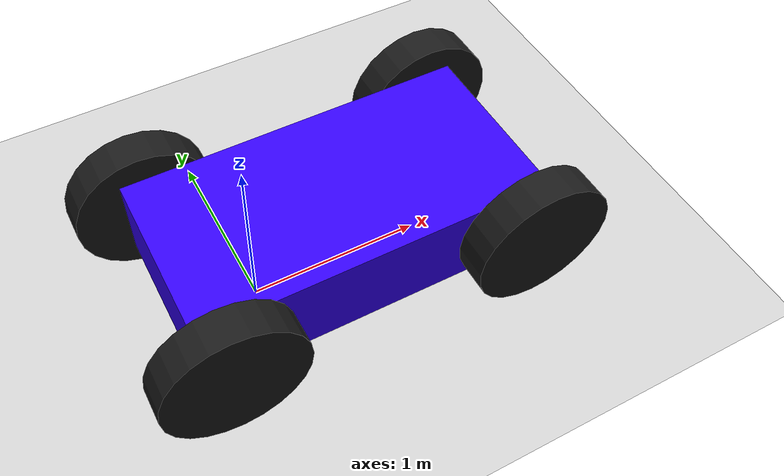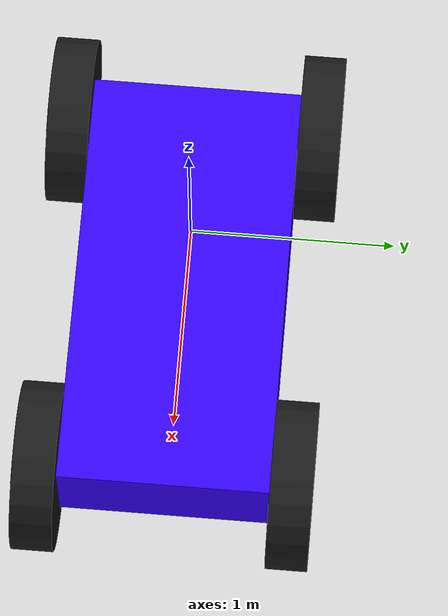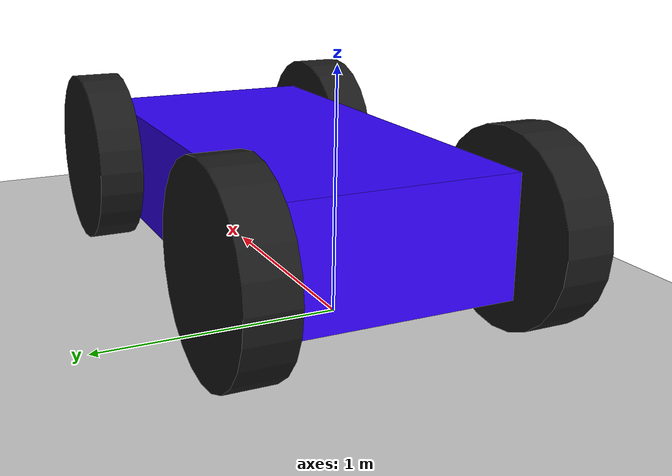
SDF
<!-- default world exported from ignitiongazebo -->
<!-- model only thing applied over it -->

<sdf version='1.9'>
    <world name='car_world'>
        <physics name='1ms' type='ignored'>
            <max_step_size>0.001</max_step_size>
            <real_time_factor>1</real_time_factor>
            <real_time_update_rate>1000</real_time_update_rate>
        </physics>
        <plugin name='gz::sim::systems::Physics' filename='ignition-gazebo-physics-system' />
        <plugin name='gz::sim::systems::UserCommands'
            filename='ignition-gazebo-user-commands-system' />
        <plugin name='gz::sim::systems::SceneBroadcaster'
            filename='ignition-gazebo-scene-broadcaster-system' />
        <plugin name='gz::sim::systems::Contact' filename='ignition-gazebo-contact-system' />
        <gravity>0 0 -9.8</gravity>
        <magnetic_field>6e-06 2.3e-05 -4.2e-05</magnetic_field>
        <atmosphere type='adiabatic' />
        <scene>
            <ambient>0.4 0.4 0.4 1</ambient>
            <background>0.7 0.7 0.7 1</background>
            <shadows>true</shadows>
        </scene>
        <model name='ground_plane'>
            <static>true</static>
            <link name='link'>
                <collision name='collision'>
                    <geometry>
                        <plane>
                            <normal>0 0 1</normal>
                            <size>100 100</size>
                        </plane>
                    </geometry>
                    <surface>
                        <friction>
                            <ode />
                        </friction>
                        <bounce />
                        <contact />
                    </surface>
                </collision>
                <visual name='visual'>
                    <geometry>
                        <plane>
                            <normal>0 0 1</normal>
                            <size>100 100</size>
                        </plane>
                    </geometry>
                    <material>
                        <ambient>0.8 0.8 0.8 1</ambient>
                        <diffuse>0.8 0.8 0.8 1</diffuse>
                        <specular>0.8 0.8 0.8 1</specular>
                    </material>
                </visual>
                <pose>0 0 0 0 -0 0</pose>
                <inertial>
                    <pose>0 0 0 0 -0 0</pose>
                    <mass>1</mass>
                    <inertia>
                        <ixx>1</ixx>
                        <ixy>0</ixy>
                        <ixz>0</ixz>
                        <iyy>1</iyy>
                        <iyz>0</iyz>
                        <izz>1</izz>
                    </inertia>
                </inertial>
                <enable_wind>false</enable_wind>
            </link>
            <pose>0 0 0 0 -0 0</pose>
            <self_collide>false</self_collide>
        </model>
        <light name='sun' type='directional'>
            <pose>0 0 10 0 -0 0</pose>
            <cast_shadows>true</cast_shadows>
            <intensity>1</intensity>
            <direction>-0.5 0.1 -0.9</direction>
            <diffuse>0.8 0.8 0.8 1</diffuse>
            <specular>0.2 0.2 0.2 1</specular>
            <attenuation>
                <range>1000</range>
                <linear>0.01</linear>
                <constant>0.90000000000000002</constant>
                <quadratic>0.001</quadratic>
            </attenuation>
            <spot>
                <inner_angle>0</inner_angle>
                <outer_angle>0</outer_angle>
                <falloff>0</falloff>
            </spot>
        </light>

        <!-- default export ends here -->
        <model name="vehicle_one" canonical_link='chassis'>
            <pose relative_to='world'>0 0 0 0 0 0</pose>
            <link name='chassis'>
                <pose relative_to='__model__'>0.5 0 0.4 0 0 0</pose>
                <inertial>
                    <mass>1.2</mass>
                    <inertia>
                        <ixx>0.095329</ixx>
                        <ixy>0</ixy>
                        <ixz>0</ixz>
                        <iyy>0.381317</iyy>
                        <iyz>0</iyz>
                        <izz>0.476646</izz>
                    </inertia>
                </inertial>
                <visual name='visual'>
                    <geometry>
                        <box>
                            <size>2.0 1.0 0.5</size>
                        </box>
                    </geometry>
                    <material>
                        <ambient>0.8 0.0 1.0 1</ambient>
                        <diffuse>0.2 0.0 1.0 1</diffuse>
                        <specular>0.0 0.0 1.0 1</specular>
                    </material>
                </visual>
                <collision name='collision'>
                    <geometry>
                        <box>
                            <size>2.0 1.0 0.5</size>
                        </box>
                    </geometry>
                </collision>
            </link>

            <!-- wheels -->

            <link name='left_front_wheel'>
                <pose relative_to="chassis">-0.88 0.6 0 -1.5707 0 0</pose>
                <inertial>
                    <mass>1</mass>
                    <inertia>
                        <ixx>0.043333</ixx>
                        <ixy>0</ixy>
                        <ixz>0</ixz>
                        <iyy>0.043333</iyy>
                        <iyz>0</iyz>
                        <izz>0.08</izz>
                    </inertia>
                </inertial>
                <visual name='visual'>
                    <geometry>
                        <cylinder>
                            <radius>0.4</radius>
                            <length>0.2</length>
                        </cylinder>
                    </geometry>
                    <material>
                        <ambient>0.1 0.1 0.1 1</ambient>
                        <diffuse>0.1 0.1 0.1 1</diffuse>
                        <specular>0.1 0.1 0.1 1</specular>
                    </material>
                    <collision name='collision'>
                        <geometry>
                            <cylinder>
                                <radius>0.4</radius>
                                <length>0.2</length>
                            </cylinder>
                        </geometry>
                    </collision>
                </visual>
            </link>
            <link name='left_rear_wheel'>
                <pose relative_to="chassis">0.88 0.6 0 -1.5707 0 0</pose>
                <inertial>
                    <mass>1</mass>
                    <inertia>
                        <ixx>0.043333</ixx>
                        <ixy>0</ixy>
                        <ixz>0</ixz>
                        <iyy>0.043333</iyy>
                        <iyz>0</iyz>
                        <izz>0.08</izz>
                    </inertia>
                </inertial>
                <visual name='visual'>
                    <geometry>
                        <cylinder>
                            <radius>0.4</radius>
                            <length>0.2</length>
                        </cylinder>
                    </geometry>
                    <material>
                        <ambient>0.1 0.1 0.1 1</ambient>
                        <diffuse>0.1 0.1 0.1 1</diffuse>
                        <specular>0.1 0.1 0.1 1</specular>
                    </material>
                    <collision name='collision'>
                        <geometry>
                            <cylinder>
                                <radius>0.4</radius>
                                <length>0.2</length>
                            </cylinder>
                        </geometry>
                    </collision>
                </visual>
            </link>
            <link name='right_front_wheel'>
                <pose relative_to="chassis">-0.88 -0.6 0 -1.5707 0 0</pose>
                <inertial>
                    <mass>1</mass>
                    <inertia>
                        <ixx>0.043333</ixx>
                        <ixy>0</ixy>
                        <ixz>0</ixz>
                        <iyy>0.043333</iyy>
                        <iyz>0</iyz>
                        <izz>0.08</izz>
                    </inertia>
                </inertial>
                <visual name='visual'>
                    <geometry>
                        <cylinder>
                            <radius>0.4</radius>
                            <length>0.2</length>
                        </cylinder>
                    </geometry>
                    <material>
                        <ambient>0.1 0.1 0.1 1</ambient>
                        <diffuse>0.1 0.1 0.1 1</diffuse>
                        <specular>0.1 0.1 0.1 1</specular>
                    </material>
                    <collision name='collision'>
                        <geometry>
                            <cylinder>
                                <radius>0.4</radius>
                                <length>0.2</length>
                            </cylinder>
                        </geometry>
                    </collision>
                </visual>
            </link>
            <link name='right_rear_wheel'>
                <pose relative_to="chassis">0.88 -0.6 0 -1.5707 0 0</pose>
                <inertial>
                    <mass>1</mass>
                    <inertia>
                        <ixx>0.043333</ixx>
                        <ixy>0</ixy>
                        <ixz>0</ixz>
                        <iyy>0.043333</iyy>
                        <iyz>0</iyz>
                        <izz>0.08</izz>
                    </inertia>
                </inertial>
                <visual name='visual'>
                    <geometry>
                        <cylinder>
                            <radius>0.4</radius>
                            <length>0.2</length>
                        </cylinder>
                    </geometry>
                    <material>
                        <ambient>0.1 0.1 0.1 1</ambient>
                        <diffuse>0.1 0.1 0.1 1</diffuse>
                        <specular>0.1 0.1 0.1 1</specular>
                    </material>
                    <collision name='collision'>
                        <geometry>
                            <cylinder>
                                <radius>0.4</radius>
                                <length>0.2</length>
                            </cylinder>
                        </geometry>
                    </collision>
                </visual>
            </link>

            <joint name='left_front_joint' type='revolute'>
                <pose relative_to='left_front_wheel' />
                <parent>chassis</parent>
                <child>left_front_wheel</child>
                <axis>
                    <xyz expressed_in="__model__">0 1 0</xyz>
                    <limit>
                        <lower>-1.79769e+308</lower>
                        <upper>1.79769e+308</upper>
                    </limit>
                </axis>
            </joint>
            <joint name='left_rear_joint' type='revolute'>
                <pose relative_to='left_rear_wheel' />
                <parent>chassis</parent>
                <child>left_rear_wheel</child>
                <axis>
                    <xyz expressed_in="__model__">0 1 0</xyz>
                    <limit>
                        <lower>-1.79769e+308</lower>
                        <upper>1.79769e+308</upper>
                    </limit>
                </axis>
            </joint>
            <joint name='right_front_joint' type='revolute'>
                <pose relative_to='right_front_wheel' />
                <parent>chassis</parent>
                <child>right_front_wheel</child>
                <axis>
                    <xyz expressed_in="__model__">0 1 0</xyz>
                    <limit>
                        <lower>-1.79769e+308</lower>
                        <upper>1.79769e+308</upper>
                    </limit>
                </axis>
            </joint>
            <joint name='right_rear_joint' type='revolute'>
                <pose relative_to='right_rear_wheel' />
                <parent>chassis</parent>
                <child>right_rear_wheel</child>
                <axis>
                    <xyz expressed_in="__model__">0 1 0</xyz>
                    <limit>
                        <lower>-1.79769e+308</lower>
                        <upper>1.79769e+308</upper>
                    </limit>
                </axis>
            </joint>

            <!-- define camera which will attach to the car body -->
            <frame name="player_camera_frame" attached_to="chassis">
                <pose>0.8 0 -0.2 0 0 0</pose>
            </frame>
            <link name='player_camera'>
                <pose relative_to='player_camera_frame' />
                <inertial>
                    <mass>1</mass>
                    <inertia>
                        <ixx>0.016</ixx>
                        <ixy>0</ixy>
                        <ixz>0</ixz>
                        <iyy>0.016</iyy>
                        <iyz>0</iyz>
                        <izz>0.016</izz>
                    </inertia>
                </inertial>
                <visual name='visual'>
                    <geometry>
                        <sphere>
                            <radius>0.2</radius>
                        </sphere>
                    </geometry>
                    <material>
                        <ambient>0.0 1 0.0 1</ambient>
                        <diffuse>0.0 1 0.0 1</diffuse>
                        <specular>0.0 1 0.0 1</specular>
                    </material>
                </visual>
                <collision name='collision'>
                    <geometry>
                        <sphere>
                            <radius>0.2</radius>
                        </sphere>
                    </geometry>
                </collision>
            </link>
            <joint name='player_camera_wheel' type='ball'>
                <parent>chassis</parent>
                <child>player_camera</child>
            </joint>
        </model>
    </world>
</sdf>
